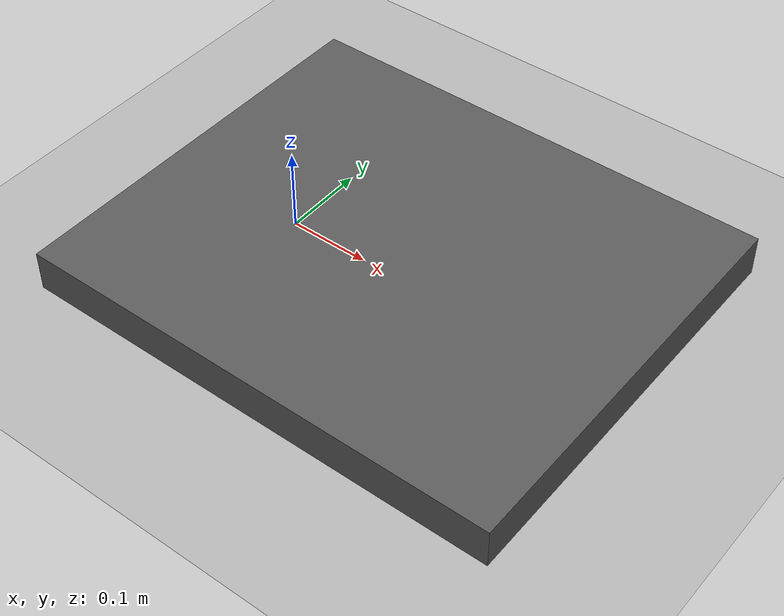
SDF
<?xml version="1.0" ?>

<sdf version="1.7">

  <world name="default">

    <!-- GAZEBO SYSTEMS                                       -->

    <!-- Physics -->
    <plugin
        filename="ignition-gazebo-physics-system"
        name="ignition::gazebo::systems::Physics">
    </plugin>

    <!-- Needed for ros_gz_sim create -->
    <plugin
        filename="ignition-gazebo-user-commands-system"
        name="ignition::gazebo::systems::UserCommands">
    </plugin>

    <!-- GUI / scene updates -->
    <plugin
        filename="ignition-gazebo-scene-broadcaster-system"
        name="ignition::gazebo::systems::SceneBroadcaster">
    </plugin>

    <!-- Camera / rendering sensors -->
    <plugin
        filename="ignition-gazebo-sensors-system"
        name="ignition::gazebo::systems::Sensors">

      <render_engine>ogre2</render_engine>

    </plugin>

    <!-- Contact sensor system -->
    <plugin
        filename="libignition-gazebo-contact-system.so"
        name="ignition::gazebo::systems::Contact">
    </plugin>

    <!-- PHYSICS                                               -->

    <physics name="default_physics" type="ode">

      <max_step_size>0.001</max_step_size>

      <real_time_factor>1.0</real_time_factor>

      <real_time_update_rate>1000</real_time_update_rate>

    </physics>

    <!-- LIGHT                                                 -->

    <light type="directional" name="sun">

      <cast_shadows>true</cast_shadows>

      <pose>0 0 10 0 0 0</pose>

      <diffuse>0.8 0.8 0.8 1</diffuse>

      <specular>0.2 0.2 0.2 1</specular>

      <direction>-0.5 0.1 -0.9</direction>

    </light>

    <!-- GROUND                                                -->

    <model name="ground_plane">

      <static>true</static>

      <link name="link">

        <collision name="collision">

          <geometry>

            <plane>

              <normal>0 0 1</normal>

              <size>10 10</size>

            </plane>

          </geometry>

        </collision>

        <visual name="visual">

          <geometry>

            <plane>

              <normal>0 0 1</normal>

              <size>10 10</size>

            </plane>

          </geometry>

          <material>

            <ambient>0.7 0.7 0.7 1</ambient>

            <diffuse>0.7 0.7 0.7 1</diffuse>

          </material>

        </visual>

      </link>

    </model>

    <!-- SO-101 WORK PLATFORM                                  -->

    <include>

      <uri>model://work_platform</uri>

      <name>work_platform</name>

      <pose>0.15 0 0.025 0 0 0</pose>

    </include>

  </world>

</sdf>

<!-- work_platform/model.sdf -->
<sdf version="1.7">

  <model name="work_platform">

    <static>true</static>

    <link name="platform_link">

      <collision name="collision">
        <geometry>
          <box>
            <size>0.60 0.50 0.05</size>
          </box>
        </geometry>
      </collision>

      <visual name="visual">
        <geometry>
          <box>
            <size>0.60 0.50 0.05</size>
          </box>
        </geometry>

        <material>
          <ambient>0.35 0.35 0.35 1</ambient>
          <diffuse>0.35 0.35 0.35 1</diffuse>
        </material>
      </visual>

    </link>

  </model>

</sdf>
